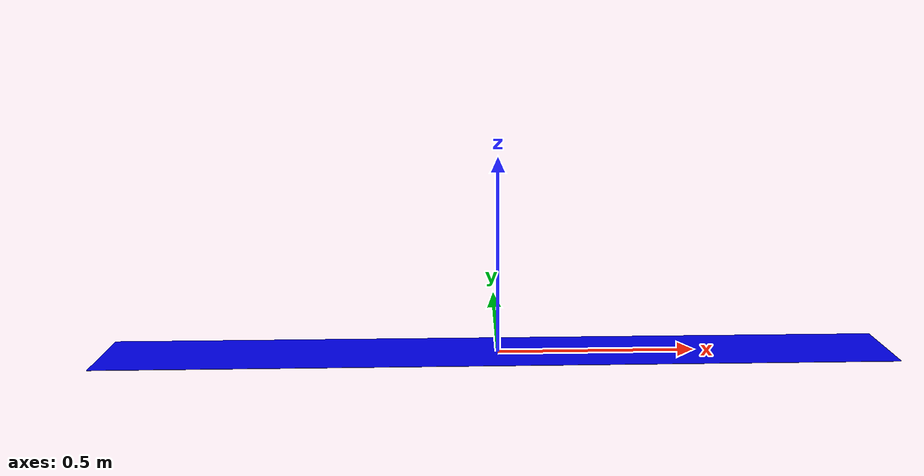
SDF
<?xml version="1.0" ?>
<sdf version="1.7">
  <model name="path">
    <static>true</static>
    <link name="link">
      <pose>0 0 0.0005 0 0 0</pose>
      <visual name="visual">
        <geometry>
          <box>
            <size>2 0.2 0.001</size>
          </box>
        </geometry>
        <material>
          <ambient>0 0 1 1</ambient>
          <diffuse>0 0 1 1</diffuse>
        </material>
      </visual>
    </link>
  </model>
</sdf>
